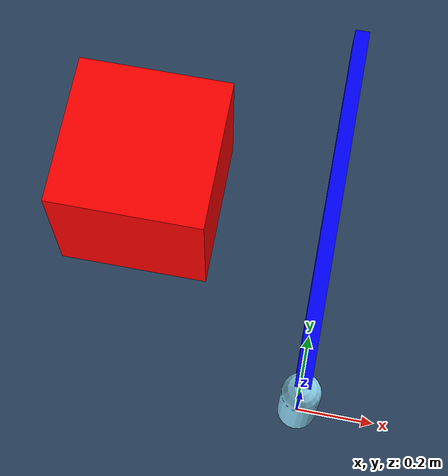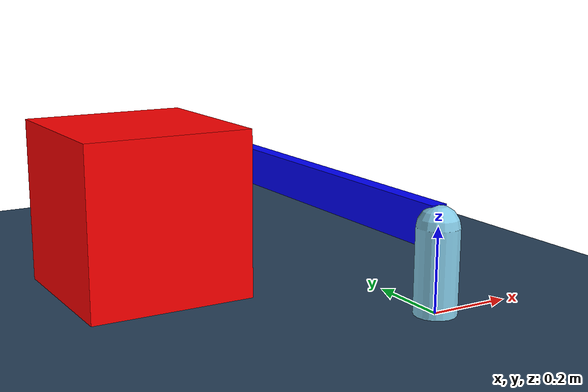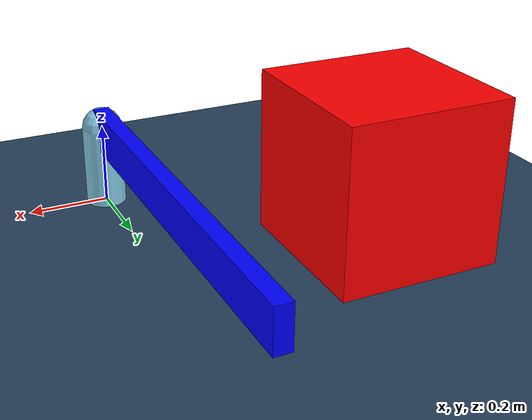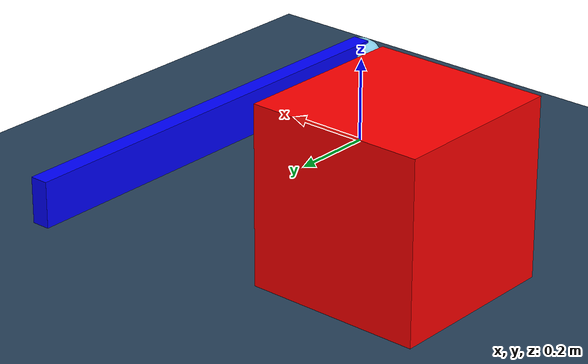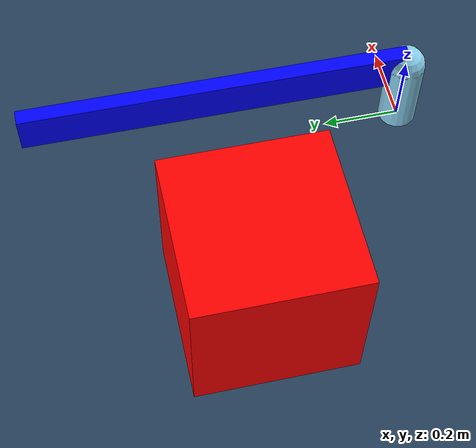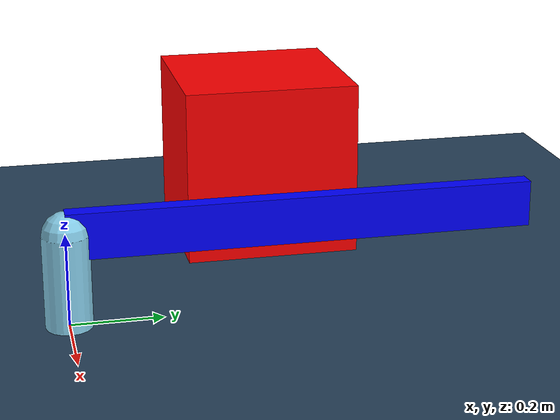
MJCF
<mujoco model="simple_joint_stable">
    <asset>
        <texture name="grid" type="2d" builtin="checker" rgb1=".1 .2 .3"
                 rgb2=".2 .3 .4" width="300" height="300" mark="edge" markrgb=".2 .3 .4"/>
        <material name="grid" texture="grid" texrepeat="2 2" texuniform="true" reflectance=".2"/>
    </asset>

    <!-- 使用较小的 timestep 和 RK4 积分器以提高数值稳定性 -->
    <compiler angle="degree"/>
    <option timestep="0.002" integrator="RK4"/>

    <worldbody>
        <light pos="0 0 1" mode="trackcom"/>
        <geom name="ground" type="plane" size="5 5 10" material="grid"
              friction="1 0.05 0.0001"/>
        <camera name="y" pos="-.1 -.6 .3" xyaxes="1 0 0 0 1 2"/>

        <!-- 固定基座 -->
        <body name="base" pos="0 0 0">
            <body name="link">
                <joint name="hinge" type="hinge" axis="0 0 1" damping="2.0" frictionloss="10.0"/>
                <geom name="hinge" type="capsule" fromto="0 0 0 0 0 0.2" size="0.05" rgba="0.53 0.81 0.92 1"/>

                <body name="indicator" pos="0 0.5 0.2">
                    <geom name="indicator_geom" type="box" size="0.02 0.5 0.05" rgba="0 0 1 1"
                          mass="10" solref="0.02 1.0" solimp="0.9 0.95" friction="0.5" />
                    <site name="indicator_site" pos="0 0 0" size="0.01" />
                </body>
            </body>
        </body>

        <!-- 修改后的物块：在自由关节上增加阻尼和臂力参数 -->
        <body name="block" pos="-0.5 0.5 0.2">
            <joint type="free" damping="0.1" armature="0.1"/>
            <geom name="box" type="box" size="0.2 0.2 0.2" rgba="1 0 0 1"
                  friction="0.2" mass="10" solref="0.02 1.0" solimp="0.9 0.95" />
        </body>

    </worldbody>

    <actuator>
        <motor joint="hinge" ctrlrange="-500 500"/>
    </actuator>

    <sensor>
        <!-- 使用 site 测量力 -->
        <force name="indicator_force" site="indicator_site"/>
        <touch name="touch" site="indicator_site" />
    </sensor>

</mujoco>
